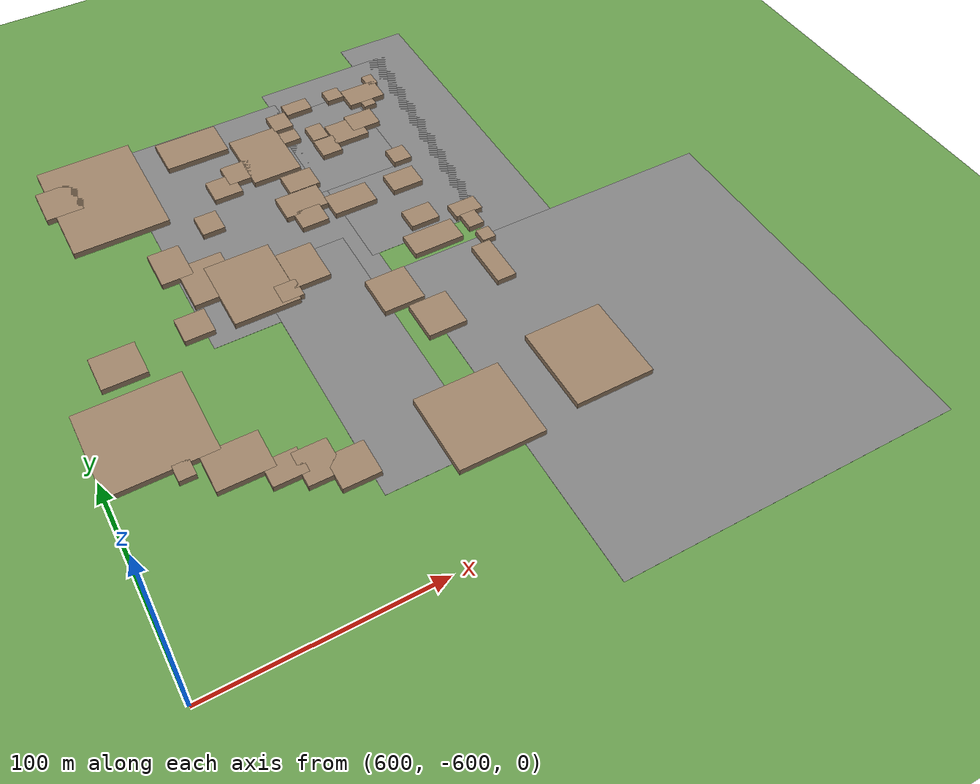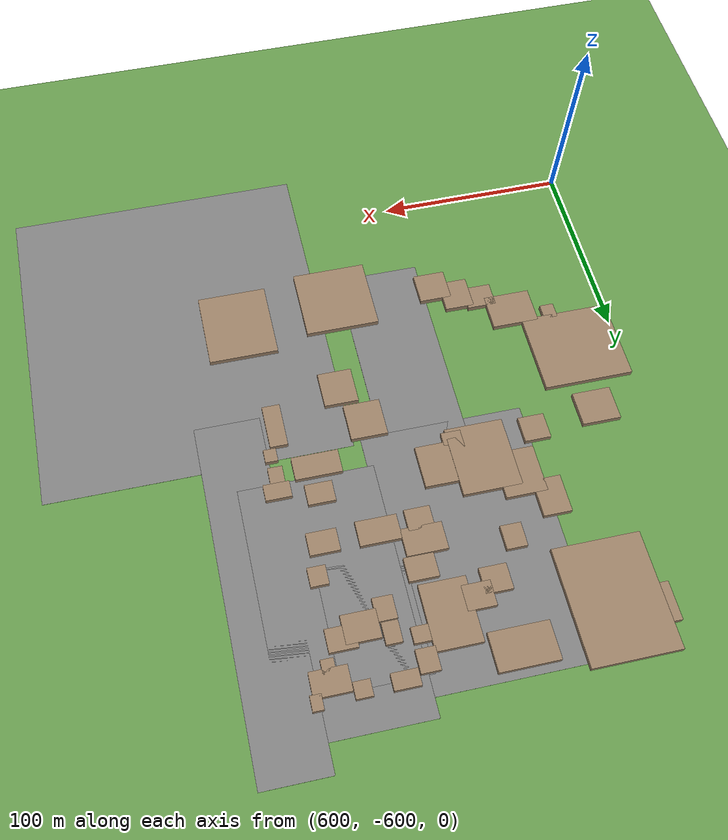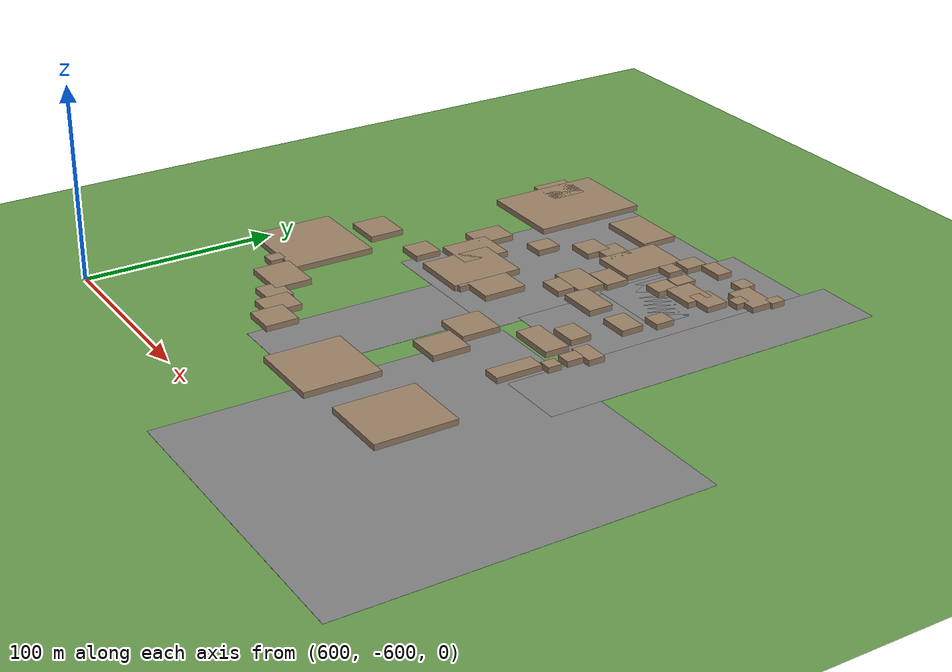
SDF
<sdf version="1.9">
 <world name="kimje_farmland">
  <model name="ground_plane">
   <static>true</static>
   <link name="link">
    <collision name="collision">
     <geometry><plane><normal>0 0 1</normal><size>2000 2000</size></plane></geometry>
    </collision>
    <visual name="visual">
     <geometry><plane><normal>0 0 1</normal><size>2000 2000</size></plane></geometry>
     <material><ambient>0.4 0.6 0.3 1</ambient><diffuse>0.4 0.6 0.3 1</diffuse></material>
    </visual>
   </link>
  </model>
  <model name="osm_6">
   <static>true</static>
   <pose>832.18 -543.94 0.040 0 0 0</pose>
   <link name="link">
    <collision name="collision"><geometry><box><size>158.71 176.58 0.080</size></box></geometry></collision>
    <visual name="visual">
     <geometry><box><size>158.71 176.58 0.080</size></box></geometry>
     <material><ambient>0.5 0.5 0.5 1</ambient><diffuse>0.5 0.5 0.5 1</diffuse></material>
    </visual>
   </link>
  </model>
  <model name="osm_9">
   <static>true</static>
   <pose>814.35 -390.88 0.040 0 0 0</pose>
   <link name="link">
    <collision name="collision"><geometry><box><size>34.50 181.24 0.080</size></box></geometry></collision>
    <visual name="visual">
     <geometry><box><size>34.50 181.24 0.080</size></box></geometry>
     <material><ambient>0.5 0.5 0.5 1</ambient><diffuse>0.5 0.5 0.5 1</diffuse></material>
    </visual>
   </link>
  </model>
  <model name="osm_11">
   <static>true</static>
   <pose>706.21 -391.60 0.040 0 0 0</pose>
   <link name="link">
    <collision name="collision"><geometry><box><size>85.42 135.34 0.080</size></box></geometry></collision>
    <visual name="visual">
     <geometry><box><size>85.42 135.34 0.080</size></box></geometry>
     <material><ambient>0.5 0.5 0.5 1</ambient><diffuse>0.5 0.5 0.5 1</diffuse></material>
    </visual>
   </link>
  </model>
  <model name="osm_40">
   <static>true</static>
   <pose>764.47 -364.30 0.040 0 0 0</pose>
   <link name="link">
    <collision name="collision"><geometry><box><size>43.47 60.11 0.080</size></box></geometry></collision>
    <visual name="visual">
     <geometry><box><size>43.47 60.11 0.080</size></box></geometry>
     <material><ambient>0.5 0.5 0.5 1</ambient><diffuse>0.5 0.5 0.5 1</diffuse></material>
    </visual>
   </link>
  </model>
  <model name="osm_41">
   <static>true</static>
   <pose>716.37 -492.19 0.040 0 0 0</pose>
   <link name="link">
    <collision name="collision"><geometry><box><size>44.62 131.80 0.080</size></box></geometry></collision>
    <visual name="visual">
     <geometry><box><size>44.62 131.80 0.080</size></box></geometry>
     <material><ambient>0.5 0.5 0.5 1</ambient><diffuse>0.5 0.5 0.5 1</diffuse></material>
    </visual>
   </link>
  </model>
  <model name="osm_117">
   <static>true</static>
   <pose>780.68 -378.61 0.040 0 0 0</pose>
   <link name="link">
    <collision name="collision"><geometry><box><size>70.03 128.39 0.080</size></box></geometry></collision>
    <visual name="visual">
     <geometry><box><size>70.03 128.39 0.080</size></box></geometry>
     <material><ambient>0.5 0.5 0.5 1</ambient><diffuse>0.5 0.5 0.5 1</diffuse></material>
    </visual>
   </link>
  </model>
  <model name="osm_142">
   <static>true</static>
   <pose>623.32 -488.18 1.500 0 0 0</pose>
   <link name="link">
    <collision name="collision"><geometry><box><size>47.30 43.63 3.000</size></box></geometry></collision>
    <visual name="visual">
     <geometry><box><size>47.30 43.63 3.000</size></box></geometry>
     <material><ambient>0.6 0.5 0.4 1</ambient><diffuse>0.6 0.5 0.4 1</diffuse></material>
    </visual>
   </link>
  </model>
  <model name="osm_161">
   <static>true</static>
   <pose>633.27 -343.74 1.500 0 0 0</pose>
   <link name="link">
    <collision name="collision"><geometry><box><size>19.68 19.34 3.000</size></box></geometry></collision>
    <visual name="visual">
     <geometry><box><size>19.68 19.34 3.000</size></box></geometry>
     <material><ambient>0.6 0.5 0.4 1</ambient><diffuse>0.6 0.5 0.4 1</diffuse></material>
    </visual>
   </link>
  </model>
  <model name="osm_162">
   <static>true</static>
   <pose>650.39 -350.46 1.500 0 0 0</pose>
   <link name="link">
    <collision name="collision"><geometry><box><size>45.06 59.31 3.000</size></box></geometry></collision>
    <visual name="visual">
     <geometry><box><size>45.06 59.31 3.000</size></box></geometry>
     <material><ambient>0.6 0.5 0.4 1</ambient><diffuse>0.6 0.5 0.4 1</diffuse></material>
    </visual>
   </link>
  </model>
  <model name="osm_163">
   <static>true</static>
   <pose>742.86 -544.43 1.500 0 0 0</pose>
   <link name="link">
    <collision name="collision"><geometry><box><size>39.38 38.77 3.000</size></box></geometry></collision>
    <visual name="visual">
     <geometry><box><size>39.38 38.77 3.000</size></box></geometry>
     <material><ambient>0.6 0.5 0.4 1</ambient><diffuse>0.6 0.5 0.4 1</diffuse></material>
    </visual>
   </link>
  </model>
  <model name="osm_200">
   <static>true</static>
   <pose>798.40 -538.67 1.500 0 0 0</pose>
   <link name="link">
    <collision name="collision"><geometry><box><size>36.80 40.90 3.000</size></box></geometry></collision>
    <visual name="visual">
     <geometry><box><size>36.80 40.90 3.000</size></box></geometry>
     <material><ambient>0.6 0.5 0.4 1</ambient><diffuse>0.6 0.5 0.4 1</diffuse></material>
    </visual>
   </link>
  </model>
  <model name="osm_1649">
   <static>true</static>
   <pose>773.94 -447.84 1.500 0 0 0</pose>
   <link name="link">
    <collision name="collision"><geometry><box><size>24.36 12.46 3.000</size></box></geometry></collision>
    <visual name="visual">
     <geometry><box><size>24.36 12.46 3.000</size></box></geometry>
     <material><ambient>0.6 0.5 0.4 1</ambient><diffuse>0.6 0.5 0.4 1</diffuse></material>
    </visual>
   </link>
  </model>
  <model name="osm_1665">
   <static>true</static>
   <pose>699.56 -337.45 1.500 0 0 0</pose>
   <link name="link">
    <collision name="collision"><geometry><box><size>30.43 19.25 3.000</size></box></geometry></collision>
    <visual name="visual">
     <geometry><box><size>30.43 19.25 3.000</size></box></geometry>
     <material><ambient>0.6 0.5 0.4 1</ambient><diffuse>0.6 0.5 0.4 1</diffuse></material>
    </visual>
   </link>
  </model>
  <model name="osm_1666">
   <static>true</static>
   <pose>728.61 -359.58 1.500 0 0 0</pose>
   <link name="link">
    <collision name="collision"><geometry><box><size>23.65 32.85 3.000</size></box></geometry></collision>
    <visual name="visual">
     <geometry><box><size>23.65 32.85 3.000</size></box></geometry>
     <material><ambient>0.6 0.5 0.4 1</ambient><diffuse>0.6 0.5 0.4 1</diffuse></material>
    </visual>
   </link>
  </model>
  <model name="osm_1667">
   <static>true</static>
   <pose>702.96 -371.54 1.500 0 0 0</pose>
   <link name="link">
    <collision name="collision"><geometry><box><size>13.83 13.15 3.000</size></box></geometry></collision>
    <visual name="visual">
     <geometry><box><size>13.83 13.15 3.000</size></box></geometry>
     <material><ambient>0.6 0.5 0.4 1</ambient><diffuse>0.6 0.5 0.4 1</diffuse></material>
    </visual>
   </link>
  </model>
  <model name="osm_1668">
   <static>true</static>
   <pose>731.18 -398.03 1.500 0 0 0</pose>
   <link name="link">
    <collision name="collision"><geometry><box><size>20.93 14.33 3.000</size></box></geometry></collision>
    <visual name="visual">
     <geometry><box><size>20.93 14.33 3.000</size></box></geometry>
     <material><ambient>0.6 0.5 0.4 1</ambient><diffuse>0.6 0.5 0.4 1</diffuse></material>
    </visual>
   </link>
  </model>
  <model name="osm_1669">
   <static>true</static>
   <pose>730.92 -409.05 1.500 0 0 0</pose>
   <link name="link">
    <collision name="collision"><geometry><box><size>13.14 11.13 3.000</size></box></geometry></collision>
    <visual name="visual">
     <geometry><box><size>13.14 11.13 3.000</size></box></geometry>
     <material><ambient>0.6 0.5 0.4 1</ambient><diffuse>0.6 0.5 0.4 1</diffuse></material>
    </visual>
   </link>
  </model>
  <model name="osm_1670">
   <static>true</static>
   <pose>736.27 -384.39 1.500 0 0 0</pose>
   <link name="link">
    <collision name="collision"><geometry><box><size>15.16 12.15 3.000</size></box></geometry></collision>
    <visual name="visual">
     <geometry><box><size>15.16 12.15 3.000</size></box></geometry>
     <material><ambient>0.6 0.5 0.4 1</ambient><diffuse>0.6 0.5 0.4 1</diffuse></material>
    </visual>
   </link>
  </model>
  <model name="osm_1671">
   <static>true</static>
   <pose>751.94 -407.09 1.500 0 0 0</pose>
   <link name="link">
    <collision name="collision"><geometry><box><size>21.05 13.01 3.000</size></box></geometry></collision>
    <visual name="visual">
     <geometry><box><size>21.05 13.01 3.000</size></box></geometry>
     <material><ambient>0.6 0.5 0.4 1</ambient><diffuse>0.6 0.5 0.4 1</diffuse></material>
    </visual>
   </link>
  </model>
  <model name="osm_1672">
   <static>true</static>
   <pose>744.58 -352.89 1.500 0 0 0</pose>
   <link name="link">
    <collision name="collision"><geometry><box><size>8.79 8.05 3.000</size></box></geometry></collision>
    <visual name="visual">
     <geometry><box><size>8.79 8.05 3.000</size></box></geometry>
     <material><ambient>0.6 0.5 0.4 1</ambient><diffuse>0.6 0.5 0.4 1</diffuse></material>
    </visual>
   </link>
  </model>
  <model name="osm_1673">
   <static>true</static>
   <pose>744.65 -340.50 1.500 0 0 0</pose>
   <link name="link">
    <collision name="collision"><geometry><box><size>9.81 11.56 3.000</size></box></geometry></collision>
    <visual name="visual">
     <geometry><box><size>9.81 11.56 3.000</size></box></geometry>
     <material><ambient>0.6 0.5 0.4 1</ambient><diffuse>0.6 0.5 0.4 1</diffuse></material>
    </visual>
   </link>
  </model>
  <model name="osm_1674">
   <static>true</static>
   <pose>753.79 -489.35 1.500 0 0 0</pose>
   <link name="link">
    <collision name="collision"><geometry><box><size>17.95 19.31 3.000</size></box></geometry></collision>
    <visual name="visual">
     <geometry><box><size>17.95 19.31 3.000</size></box></geometry>
     <material><ambient>0.6 0.5 0.4 1</ambient><diffuse>0.6 0.5 0.4 1</diffuse></material>
    </visual>
   </link>
  </model>
  <model name="osm_1675">
   <static>true</static>
   <pose>790.42 -473.92 1.500 0 0 0</pose>
   <link name="link">
    <collision name="collision"><geometry><box><size>9.33 23.60 3.000</size></box></geometry></collision>
    <visual name="visual">
     <geometry><box><size>9.33 23.60 3.000</size></box></geometry>
     <material><ambient>0.6 0.5 0.4 1</ambient><diffuse>0.6 0.5 0.4 1</diffuse></material>
    </visual>
   </link>
  </model>
  <model name="osm_1676">
   <static>true</static>
   <pose>744.09 -467.93 1.500 0 0 0</pose>
   <link name="link">
    <collision name="collision"><geometry><box><size>19.20 20.05 3.000</size></box></geometry></collision>
    <visual name="visual">
     <geometry><box><size>19.20 20.05 3.000</size></box></geometry>
     <material><ambient>0.6 0.5 0.4 1</ambient><diffuse>0.6 0.5 0.4 1</diffuse></material>
    </visual>
   </link>
  </model>
  <model name="osm_1677">
   <static>true</static>
   <pose>714.81 -435.57 1.500 0 0 0</pose>
   <link name="link">
    <collision name="collision"><geometry><box><size>17.24 22.30 3.000</size></box></geometry></collision>
    <visual name="visual">
     <geometry><box><size>17.24 22.30 3.000</size></box></geometry>
     <material><ambient>0.6 0.5 0.4 1</ambient><diffuse>0.6 0.5 0.4 1</diffuse></material>
    </visual>
   </link>
  </model>
  <model name="osm_1678">
   <static>true</static>
   <pose>703.31 -446.71 1.500 0 0 0</pose>
   <link name="link">
    <collision name="collision"><geometry><box><size>10.27 10.33 3.000</size></box></geometry></collision>
    <visual name="visual">
     <geometry><box><size>10.27 10.33 3.000</size></box></geometry>
     <material><ambient>0.6 0.5 0.4 1</ambient><diffuse>0.6 0.5 0.4 1</diffuse></material>
    </visual>
   </link>
  </model>
  <model name="osm_1679">
   <static>true</static>
   <pose>690.87 -434.90 1.500 0 0 0</pose>
   <link name="link">
    <collision name="collision"><geometry><box><size>30.60 37.14 3.000</size></box></geometry></collision>
    <visual name="visual">
     <geometry><box><size>30.60 37.14 3.000</size></box></geometry>
     <material><ambient>0.6 0.5 0.4 1</ambient><diffuse>0.6 0.5 0.4 1</diffuse></material>
    </visual>
   </link>
  </model>
  <model name="osm_1680">
   <static>true</static>
   <pose>675.07 -422.92 1.500 0 0 0</pose>
   <link name="link">
    <collision name="collision"><geometry><box><size>21.35 24.94 3.000</size></box></geometry></collision>
    <visual name="visual">
     <geometry><box><size>21.35 24.94 3.000</size></box></geometry>
     <material><ambient>0.6 0.5 0.4 1</ambient><diffuse>0.6 0.5 0.4 1</diffuse></material>
    </visual>
   </link>
  </model>
  <model name="osm_1681">
   <static>true</static>
   <pose>660.39 -445.36 1.500 0 0 0</pose>
   <link name="link">
    <collision name="collision"><geometry><box><size>13.70 13.68 3.000</size></box></geometry></collision>
    <visual name="visual">
     <geometry><box><size>13.70 13.68 3.000</size></box></geometry>
     <material><ambient>0.6 0.5 0.4 1</ambient><diffuse>0.6 0.5 0.4 1</diffuse></material>
    </visual>
   </link>
  </model>
  <model name="osm_1682">
   <static>true</static>
   <pose>624.95 -450.89 1.500 0 0 0</pose>
   <link name="link">
    <collision name="collision"><geometry><box><size>20.24 18.20 3.000</size></box></geometry></collision>
    <visual name="visual">
     <geometry><box><size>20.24 18.20 3.000</size></box></geometry>
     <material><ambient>0.6 0.5 0.4 1</ambient><diffuse>0.6 0.5 0.4 1</diffuse></material>
    </visual>
   </link>
  </model>
  <model name="osm_1683">
   <static>true</static>
   <pose>663.38 -407.15 1.500 0 0 0</pose>
   <link name="link">
    <collision name="collision"><geometry><box><size>14.60 19.70 3.000</size></box></geometry></collision>
    <visual name="visual">
     <geometry><box><size>14.60 19.70 3.000</size></box></geometry>
     <material><ambient>0.6 0.5 0.4 1</ambient><diffuse>0.6 0.5 0.4 1</diffuse></material>
    </visual>
   </link>
  </model>
  <model name="osm_1684">
   <static>true</static>
   <pose>688.24 -390.58 1.500 0 0 0</pose>
   <link name="link">
    <collision name="collision"><geometry><box><size>10.62 12.41 3.000</size></box></geometry></collision>
    <visual name="visual">
     <geometry><box><size>10.62 12.41 3.000</size></box></geometry>
     <material><ambient>0.6 0.5 0.4 1</ambient><diffuse>0.6 0.5 0.4 1</diffuse></material>
    </visual>
   </link>
  </model>
  <model name="osm_1685">
   <static>true</static>
   <pose>795.72 -457.68 1.500 0 0 0</pose>
   <link name="link">
    <collision name="collision"><geometry><box><size>6.55 7.09 3.000</size></box></geometry></collision>
    <visual name="visual">
     <geometry><box><size>6.55 7.09 3.000</size></box></geometry>
     <material><ambient>0.6 0.5 0.4 1</ambient><diffuse>0.6 0.5 0.4 1</diffuse></material>
    </visual>
   </link>
  </model>
  <model name="osm_1686">
   <static>true</static>
   <pose>794.97 -446.30 1.500 0 0 0</pose>
   <link name="link">
    <collision name="collision"><geometry><box><size>7.59 9.14 3.000</size></box></geometry></collision>
    <visual name="visual">
     <geometry><box><size>7.59 9.14 3.000</size></box></geometry>
     <material><ambient>0.6 0.5 0.4 1</ambient><diffuse>0.6 0.5 0.4 1</diffuse></material>
    </visual>
   </link>
  </model>
  <model name="osm_1687">
   <static>true</static>
   <pose>796.00 -437.82 1.500 0 0 0</pose>
   <link name="link">
    <collision name="collision"><geometry><box><size>13.50 8.65 3.000</size></box></geometry></collision>
    <visual name="visual">
     <geometry><box><size>13.50 8.65 3.000</size></box></geometry>
     <material><ambient>0.6 0.5 0.4 1</ambient><diffuse>0.6 0.5 0.4 1</diffuse></material>
    </visual>
   </link>
  </model>
  <model name="osm_1688">
   <static>true</static>
   <pose>775.50 -432.41 1.500 0 0 0</pose>
   <link name="link">
    <collision name="collision"><geometry><box><size>14.11 10.97 3.000</size></box></geometry></collision>
    <visual name="visual">
     <geometry><box><size>14.11 10.97 3.000</size></box></geometry>
     <material><ambient>0.6 0.5 0.4 1</ambient><diffuse>0.6 0.5 0.4 1</diffuse></material>
    </visual>
   </link>
  </model>
  <model name="osm_1689">
   <static>true</static>
   <pose>779.61 -406.76 1.500 0 0 0</pose>
   <link name="link">
    <collision name="collision"><geometry><box><size>15.28 11.68 3.000</size></box></geometry></collision>
    <visual name="visual">
     <geometry><box><size>15.28 11.68 3.000</size></box></geometry>
     <material><ambient>0.6 0.5 0.4 1</ambient><diffuse>0.6 0.5 0.4 1</diffuse></material>
    </visual>
   </link>
  </model>
  <model name="osm_1690">
   <static>true</static>
   <pose>785.63 -390.31 1.500 0 0 0</pose>
   <link name="link">
    <collision name="collision"><geometry><box><size>9.17 9.85 3.000</size></box></geometry></collision>
    <visual name="visual">
     <geometry><box><size>9.17 9.85 3.000</size></box></geometry>
     <material><ambient>0.6 0.5 0.4 1</ambient><diffuse>0.6 0.5 0.4 1</diffuse></material>
    </visual>
   </link>
  </model>
  <model name="osm_1691">
   <static>true</static>
   <pose>781.28 -358.55 1.500 0 0 0</pose>
   <link name="link">
    <collision name="collision"><geometry><box><size>14.43 11.49 3.000</size></box></geometry></collision>
    <visual name="visual">
     <geometry><box><size>14.43 11.49 3.000</size></box></geometry>
     <material><ambient>0.6 0.5 0.4 1</ambient><diffuse>0.6 0.5 0.4 1</diffuse></material>
    </visual>
   </link>
  </model>
  <model name="osm_1692">
   <static>true</static>
   <pose>771.26 -362.09 1.500 0 0 0</pose>
   <link name="link">
    <collision name="collision"><geometry><box><size>17.36 14.24 3.000</size></box></geometry></collision>
    <visual name="visual">
     <geometry><box><size>17.36 14.24 3.000</size></box></geometry>
     <material><ambient>0.6 0.5 0.4 1</ambient><diffuse>0.6 0.5 0.4 1</diffuse></material>
    </visual>
   </link>
  </model>
  <model name="osm_1693">
   <static>true</static>
   <pose>757.73 -356.46 1.500 0 0 0</pose>
   <link name="link">
    <collision name="collision"><geometry><box><size>8.18 10.92 3.000</size></box></geometry></collision>
    <visual name="visual">
     <geometry><box><size>8.18 10.92 3.000</size></box></geometry>
     <material><ambient>0.6 0.5 0.4 1</ambient><diffuse>0.6 0.5 0.4 1</diffuse></material>
    </visual>
   </link>
  </model>
  <model name="osm_1694">
   <static>true</static>
   <pose>790.58 -340.03 1.500 0 0 0</pose>
   <link name="link">
    <collision name="collision"><geometry><box><size>18.65 12.60 3.000</size></box></geometry></collision>
    <visual name="visual">
     <geometry><box><size>18.65 12.60 3.000</size></box></geometry>
     <material><ambient>0.6 0.5 0.4 1</ambient><diffuse>0.6 0.5 0.4 1</diffuse></material>
    </visual>
   </link>
  </model>
  <model name="osm_1695">
   <static>true</static>
   <pose>756.71 -333.89 1.500 0 0 0</pose>
   <link name="link">
    <collision name="collision"><geometry><box><size>13.24 8.25 3.000</size></box></geometry></collision>
    <visual name="visual">
     <geometry><box><size>13.24 8.25 3.000</size></box></geometry>
     <material><ambient>0.6 0.5 0.4 1</ambient><diffuse>0.6 0.5 0.4 1</diffuse></material>
    </visual>
   </link>
  </model>
  <model name="osm_1697">
   <static>true</static>
   <pose>798.55 -332.02 1.500 0 0 0</pose>
   <link name="link">
    <collision name="collision"><geometry><box><size>5.50 7.46 3.000</size></box></geometry></collision>
    <visual name="visual">
     <geometry><box><size>5.50 7.46 3.000</size></box></geometry>
     <material><ambient>0.6 0.5 0.4 1</ambient><diffuse>0.6 0.5 0.4 1</diffuse></material>
    </visual>
   </link>
  </model>
  <model name="osm_1698">
   <static>true</static>
   <pose>790.11 -346.99 1.500 0 0 0</pose>
   <link name="link">
    <collision name="collision"><geometry><box><size>6.41 7.25 3.000</size></box></geometry></collision>
    <visual name="visual">
     <geometry><box><size>6.41 7.25 3.000</size></box></geometry>
     <material><ambient>0.6 0.5 0.4 1</ambient><diffuse>0.6 0.5 0.4 1</diffuse></material>
    </visual>
   </link>
  </model>
  <model name="osm_1699">
   <static>true</static>
   <pose>776.86 -333.71 1.500 0 0 0</pose>
   <link name="link">
    <collision name="collision"><geometry><box><size>8.39 8.10 3.000</size></box></geometry></collision>
    <visual name="visual">
     <geometry><box><size>8.39 8.10 3.000</size></box></geometry>
     <material><ambient>0.6 0.5 0.4 1</ambient><diffuse>0.6 0.5 0.4 1</diffuse></material>
    </visual>
   </link>
  </model>
  <model name="osm_1710">
   <static>true</static>
   <pose>630.86 -512.39 1.500 0 0 0</pose>
   <link name="link">
    <collision name="collision"><geometry><box><size>7.39 8.22 3.000</size></box></geometry></collision>
    <visual name="visual">
     <geometry><box><size>7.39 8.22 3.000</size></box></geometry>
     <material><ambient>0.6 0.5 0.4 1</ambient><diffuse>0.6 0.5 0.4 1</diffuse></material>
    </visual>
   </link>
  </model>
  <model name="osm_1711">
   <static>true</static>
   <pose>650.50 -518.16 1.500 0 0 0</pose>
   <link name="link">
    <collision name="collision"><geometry><box><size>24.78 19.29 3.000</size></box></geometry></collision>
    <visual name="visual">
     <geometry><box><size>24.78 19.29 3.000</size></box></geometry>
     <material><ambient>0.6 0.5 0.4 1</ambient><diffuse>0.6 0.5 0.4 1</diffuse></material>
    </visual>
   </link>
  </model>
  <model name="osm_1712">
   <static>true</static>
   <pose>665.32 -529.73 1.500 0 0 0</pose>
   <link name="link">
    <collision name="collision"><geometry><box><size>15.34 12.84 3.000</size></box></geometry></collision>
    <visual name="visual">
     <geometry><box><size>15.34 12.84 3.000</size></box></geometry>
     <material><ambient>0.6 0.5 0.4 1</ambient><diffuse>0.6 0.5 0.4 1</diffuse></material>
    </visual>
   </link>
  </model>
  <model name="osm_1713">
   <static>true</static>
   <pose>688.82 -541.32 1.500 0 0 0</pose>
   <link name="link">
    <collision name="collision"><geometry><box><size>16.94 16.73 3.000</size></box></geometry></collision>
    <visual name="visual">
     <geometry><box><size>16.94 16.73 3.000</size></box></geometry>
     <material><ambient>0.6 0.5 0.4 1</ambient><diffuse>0.6 0.5 0.4 1</diffuse></material>
    </visual>
   </link>
  </model>
  <model name="osm_1752">
   <static>true</static>
   <pose>677.32 -533.65 1.500 0 0 0</pose>
   <link name="link">
    <collision name="collision"><geometry><box><size>15.38 17.40 3.000</size></box></geometry></collision>
    <visual name="visual">
     <geometry><box><size>15.38 17.40 3.000</size></box></geometry>
     <material><ambient>0.6 0.5 0.4 1</ambient><diffuse>0.6 0.5 0.4 1</diffuse></material>
    </visual>
   </link>
  </model>
  <model name="osm_1884">
   <static>true</static>
   <pose>713.25 -365.10 1.500 0 0 0</pose>
   <link name="link">
    <collision name="collision"><geometry><box><size>14.53 12.84 3.000</size></box></geometry></collision>
    <visual name="visual">
     <geometry><box><size>14.53 12.84 3.000</size></box></geometry>
     <material><ambient>0.6 0.5 0.4 1</ambient><diffuse>0.6 0.5 0.4 1</diffuse></material>
    </visual>
   </link>
  </model>
  <model name="osm_1885">
   <static>true</static>
   <pose>758.35 -368.30 1.500 0 0 0</pose>
   <link name="link">
    <collision name="collision"><geometry><box><size>10.11 11.81 3.000</size></box></geometry></collision>
    <visual name="visual">
     <geometry><box><size>10.11 11.81 3.000</size></box></geometry>
     <material><ambient>0.6 0.5 0.4 1</ambient><diffuse>0.6 0.5 0.4 1</diffuse></material>
    </visual>
   </link>
  </model>
 </world>
</sdf>
